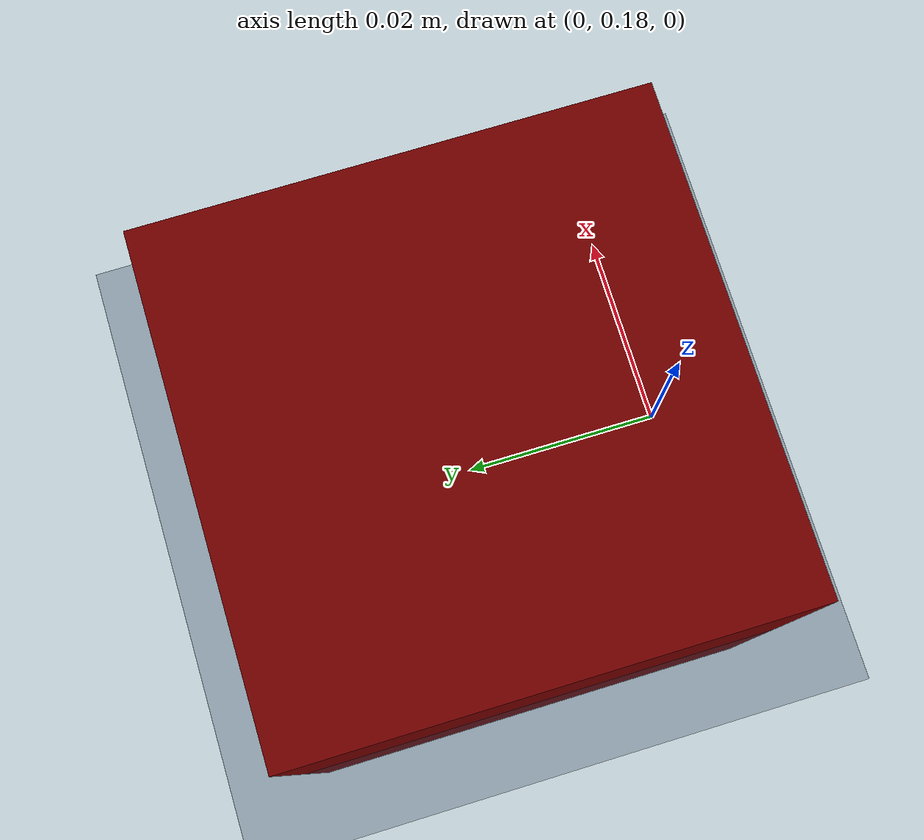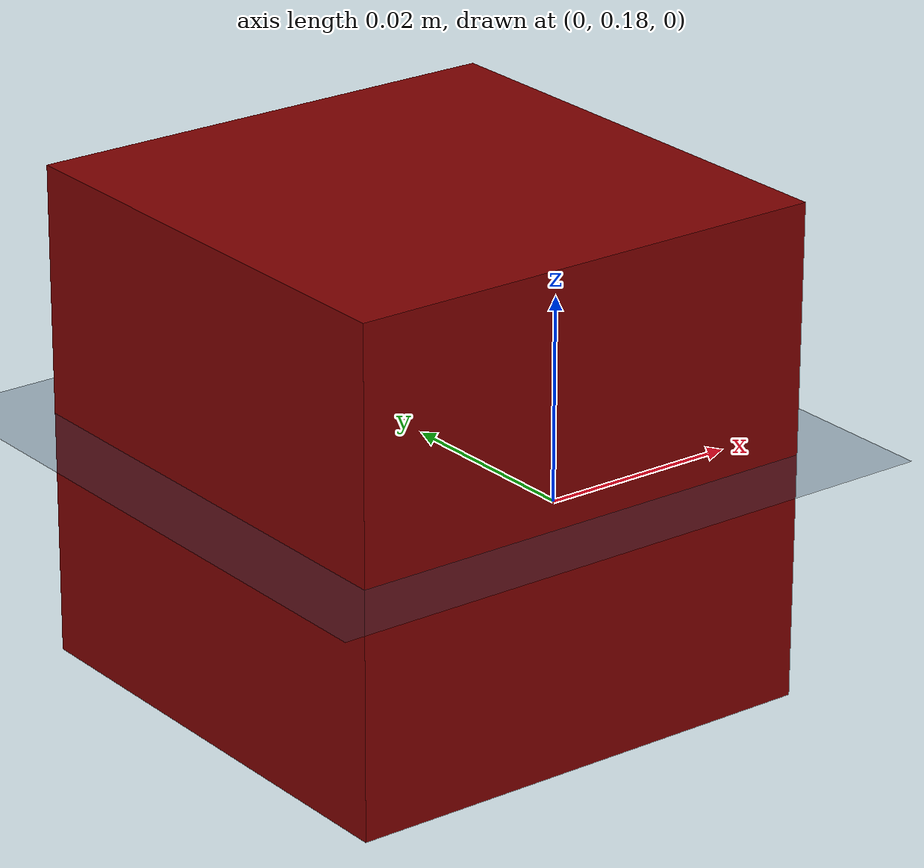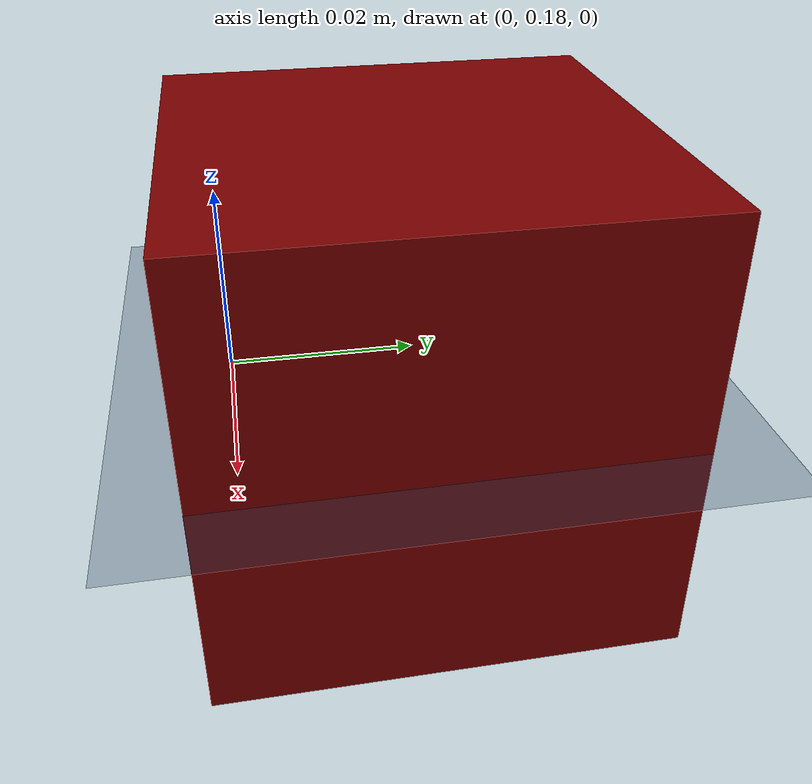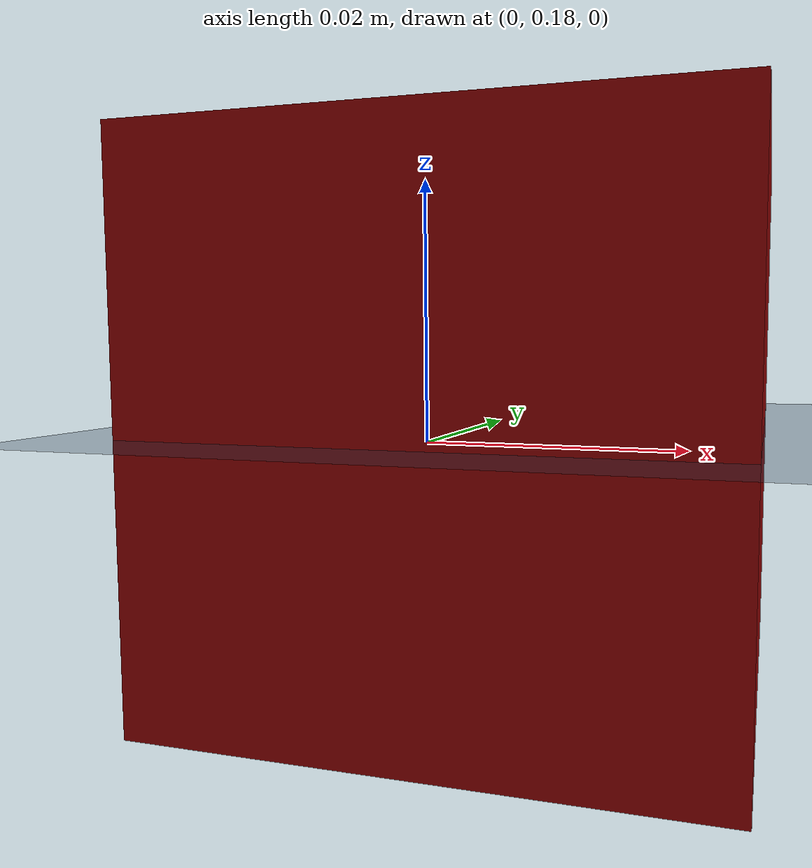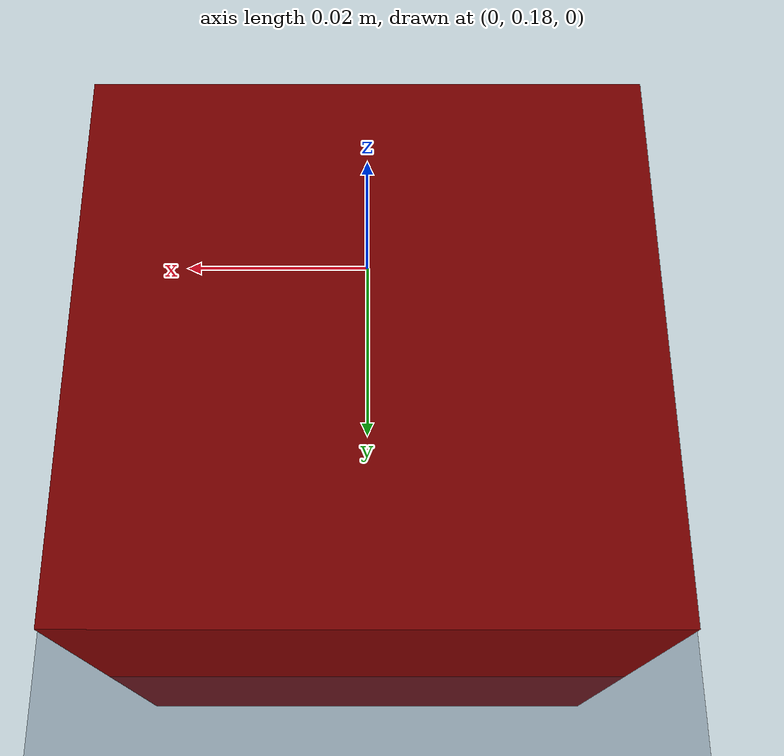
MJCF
<mujoco model="orcahand scene">

    <!-- Camera placement -->
    <statistic extent="0.3" center="0 0 0.15"/>
    <visual>
      <rgba haze="0.15 0.25 0.35 1"/>
      <quality shadowsize="8192"/>
      <global azimuth="220" elevation="-30"/>
    </visual>

    <!-- Background -->
    <asset>
      <texture type="skybox" builtin="gradient" rgb1="0.3 0.5 0.7" rgb2="0 0 0" width="512" height="3072"/>
      <texture type="2d" name="groundplane" builtin="checker" mark="edge" rgb1="0.2 0.3 0.4" rgb2="0.1 0.2 0.3"
        markrgb="0.8 0.8 0.8" width="300" height="300"/>
      <material name="groundplane" texture="groundplane" texuniform="true" texrepeat="5 5" reflectance="0.2"/>
    </asset>

    <worldbody>
      <!-- Lighting and floor -->
      <light pos="0 0 1"/>
      <light pos="0.3 0 1.5" dir="0 0 -1" directional="true"/>
      <geom name="floor" pos="0 0 0" size="0 0 0.05" type="plane" material="groundplane"/>

      <!-- Example object -->
      <body name="object" pos="0 0.2 0">
        <freejoint/>
        <geom type="box" size="0.025 0.025 0.025" rgba="0.5 0 0 1" condim="6" priority="1" friction="0.5 0.01 0.003"/>
      </body>
    </worldbody>
  </mujoco>
